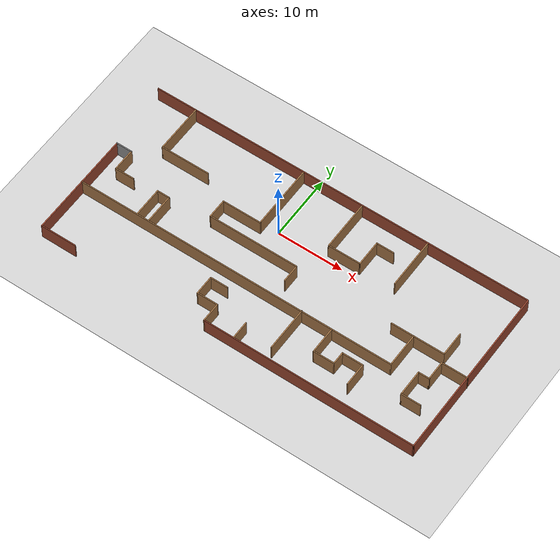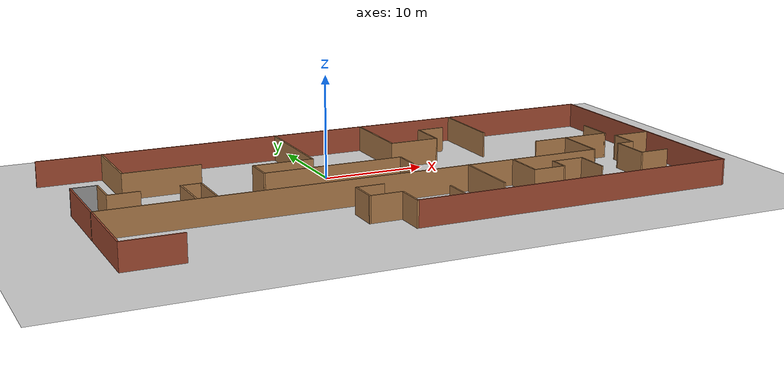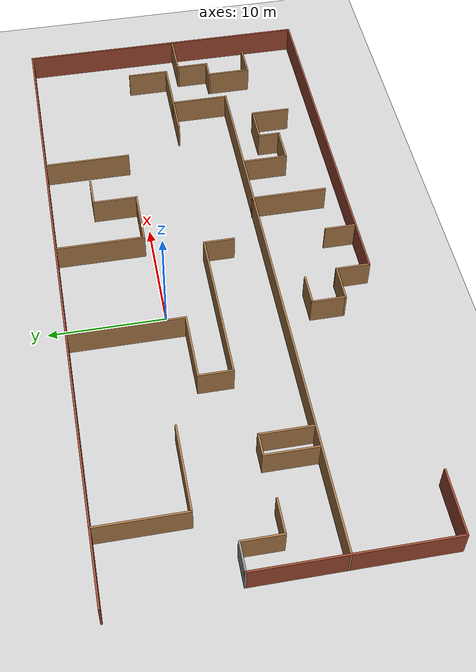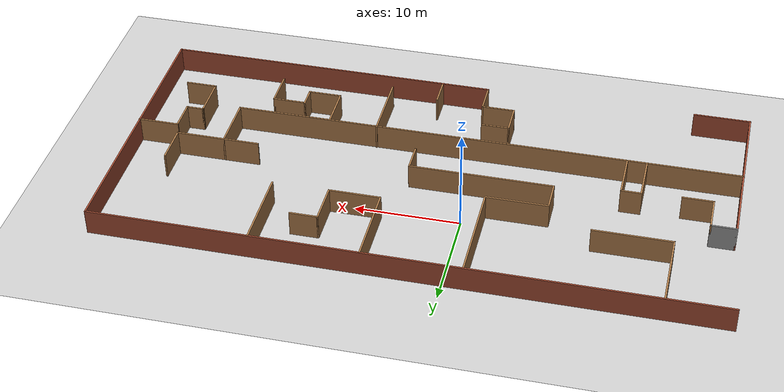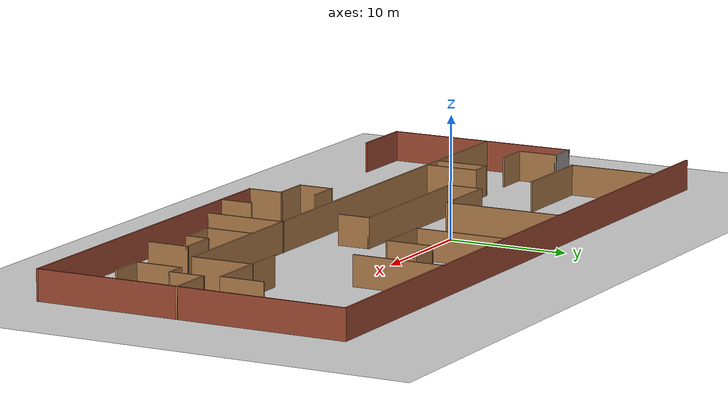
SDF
<sdf version="1.7">
 <world name="default">
  <light name="sun" type="directional">
   <pose>0 0 10 0 -0 0</pose>
   <diffuse>0.8 0.8 0.8 1</diffuse>
   <specular>0.2 0.2 0.2 1</specular>
   <attenuation>
    <range>1000</range>
    <constant>0.9</constant>
    <linear>0.01</linear>
    <quadratic>0.001</quadratic>
   </attenuation>
   <direction>-0.5 0.1 -0.9</direction>
   <spot><inner_angle>0</inner_angle><outer_angle>0</outer_angle><falloff>0</falloff></spot>
  </light>
  <model name="ground_plane">
   <static>1</static>
   <link name="link">
    <collision name="collision">
     <geometry><plane><normal>0 0 1</normal><size>100 100</size></plane></geometry>
     <surface>
      <contact><collide_bitmask>65535</collide_bitmask></contact>
      <friction><ode><mu>100</mu><mu2>50</mu2></ode></friction>
     </surface>
    </collision>
    <visual name="visual">
     <cast_shadows>0</cast_shadows>
     <geometry><plane><normal>0 0 1</normal><size>100 100</size></plane></geometry>
     <material>
      <script><uri>file://media/materials/scripts/gazebo.material</uri><name>Gazebo/Grey</name></script>
     </material>
    </visual>
   </link>
  </model>
  <gravity>0 0 -9.8</gravity>
  <magnetic_field>6e-06 2.3e-05 -4.2e-05</magnetic_field>
  <atmosphere type="adiabatic"/>
  <physics type="ode">
   <max_step_size>0.001</max_step_size>
   <real_time_factor>1</real_time_factor>
   <real_time_update_rate>1000</real_time_update_rate>
  </physics>
  <scene><ambient>0.4 0.4 0.4 1</ambient><background>0.7 0.7 0.7 1</background><shadows>1</shadows></scene>
  <spherical_coordinates>
   <surface_model>EARTH_WGS84</surface_model>
   <latitude_deg>0</latitude_deg>
   <longitude_deg>0</longitude_deg>
   <elevation>0</elevation>
   <heading_deg>0</heading_deg>
  </spherical_coordinates>
  <model name="maze.world">
   <pose>3.62591 -4.76303 0 0 -0 0</pose>
   <link name="Wall_1">
    <collision name="Wall_1_Collision">
     <geometry><box><size>58.5 0.15 2.5</size></box></geometry>
     <pose>0 0 1.25 0 -0 0</pose>
    </collision>
    <visual name="Wall_1_Visual">
     <pose>0 0 1.25 0 -0 0</pose>
     <geometry><box><size>58.5 0.15 2.5</size></box></geometry>
     <material>
      <script><uri>file://media/materials/scripts/gazebo.material</uri><name>Gazebo/Bricks</name></script>
      <ambient>1 1 1 1</ambient>
     </material>
     <meta><layer>0</layer></meta>
    </visual>
    <pose>-0.024029 13.2267 0 0 -0 0</pose>
   </link>
   <link name="Wall_11">
    <collision name="Wall_11_Collision">
     <geometry><box><size>7.75 0.15 2.5</size></box></geometry>
     <pose>0 0 1.25 0 -0 0</pose>
    </collision>
    <visual name="Wall_11_Visual">
     <pose>0 0 1.25 0 -0 0</pose>
     <geometry><box><size>7.75 0.15 2.5</size></box></geometry>
     <material>
      <script><uri>file://media/materials/scripts/gazebo.material</uri><name>Gazebo/Wood</name></script>
      <ambient>1 1 1 1</ambient>
     </material>
     <meta><layer>0</layer></meta>
    </visual>
    <pose>13.9059 9.42665 0 0 -0 -1.5708</pose>
   </link>
   <link name="Wall_14">
    <collision name="Wall_14_Collision">
     <geometry><box><size>16.25 0.15 2.5</size></box></geometry>
     <pose>0 0 1.25 0 -0 0</pose>
    </collision>
    <visual name="Wall_14_Visual">
     <pose>0 0 1.25 0 -0 0</pose>
     <geometry><box><size>16.25 0.15 2.5</size></box></geometry>
     <material>
      <script><uri>file://media/materials/scripts/gazebo.material</uri><name>Gazebo/Bricks</name></script>
      <ambient>1 1 1 1</ambient>
     </material>
     <meta><layer>0</layer></meta>
    </visual>
    <pose>-28.3193 -5.17665 0 0 -0 -1.5708</pose>
   </link>
   <link name="Wall_15">
    <collision name="Wall_15_Collision">
     <geometry><box><size>5.5 0.15 2.5</size></box></geometry>
     <pose>0 0 1.25 0 -0 0</pose>
    </collision>
    <visual name="Wall_15_Visual">
     <pose>0 0 1.25 0 -0 0</pose>
     <geometry><box><size>5.5 0.15 2.5</size></box></geometry>
     <material>
      <script><uri>file://media/materials/scripts/gazebo.material</uri><name>Gazebo/Bricks</name></script>
      <ambient>1 1 1 1</ambient>
     </material>
     <meta><layer>0</layer></meta>
    </visual>
    <pose>-25.6443 -13.2267 0 0 -0 0</pose>
   </link>
   <link name="Wall_17">
    <collision name="Wall_17_Collision">
     <geometry><box><size>2.5 0.15 2.5</size></box></geometry>
     <pose>0 0 1.25 0 -0 0</pose>
    </collision>
    <visual name="Wall_17_Visual">
     <pose>0 0 1.25 0 -0 0</pose>
     <geometry><box><size>2.5 0.15 2.5</size></box></geometry>
     <material>
      <script><uri>file://media/materials/scripts/gazebo.material</uri><name>Gazebo/Grey</name></script>
      <ambient>1 1 1 1</ambient>
     </material>
     <meta><layer>0</layer></meta>
    </visual>
    <pose>-27.1443 2.87335 0 0 -0 0</pose>
   </link>
   <link name="Wall_18">
    <collision name="Wall_18_Collision">
     <geometry><box><size>3.5 0.15 2.5</size></box></geometry>
     <pose>0 0 1.25 0 -0 0</pose>
    </collision>
    <visual name="Wall_18_Visual">
     <pose>0 0 1.25 0 -0 0</pose>
     <geometry><box><size>3.5 0.15 2.5</size></box></geometry>
     <material>
      <script><uri>file://media/materials/scripts/gazebo.material</uri><name>Gazebo/Wood</name></script>
      <ambient>1 1 1 1</ambient>
     </material>
     <meta><layer>0</layer></meta>
    </visual>
    <pose>-25.9693 1.19835 0 0 -0 -1.5708</pose>
   </link>
   <link name="Wall_19">
    <collision name="Wall_19_Collision">
     <geometry><box><size>3 0.15 2.5</size></box></geometry>
     <pose>0 0 1.25 0 -0 0</pose>
    </collision>
    <visual name="Wall_19_Visual">
     <pose>0 0 1.25 0 -0 0</pose>
     <geometry><box><size>3 0.15 2.5</size></box></geometry>
     <material>
      <script><uri>file://media/materials/scripts/gazebo.material</uri><name>Gazebo/Wood</name></script>
      <ambient>1 1 1 1</ambient>
     </material>
     <meta><layer>0</layer></meta>
    </visual>
    <pose>-24.5443 -0.476653 0 0 -0 0</pose>
   </link>
   <link name="Wall_21">
    <collision name="Wall_21_Collision">
     <geometry><box><size>48.75 0.15 2.5</size></box></geometry>
     <pose>0 0 1.25 0 -0 0</pose>
    </collision>
    <visual name="Wall_21_Visual">
     <pose>0 0 1.25 0 -0 0</pose>
     <geometry><box><size>48.75 0.15 2.5</size></box></geometry>
     <material>
      <script><uri>file://media/materials/scripts/gazebo.material</uri><name>Gazebo/Wood</name></script>
      <ambient>1 1 1 1</ambient>
     </material>
     <meta><layer>0</layer></meta>
    </visual>
    <pose>-4.01934 -4.70554 0 0 -0 0</pose>
   </link>
   <link name="Wall_22">
    <collision name="Wall_22_Collision">
     <geometry><box><size>5.25 0.15 2.5</size></box></geometry>
     <pose>0 0 1.25 0 -0 0</pose>
    </collision>
    <visual name="Wall_22_Visual">
     <pose>0 0 1.25 0 -0 0</pose>
     <geometry><box><size>5.25 0.15 2.5</size></box></geometry>
     <material>
      <script><uri>file://media/materials/scripts/gazebo.material</uri><name>Gazebo/Wood</name></script>
      <ambient>1 1 1 1</ambient>
     </material>
     <meta><layer>0</layer></meta>
    </visual>
    <pose>20.2807 -2.15554 0 0 -0 1.5708</pose>
   </link>
   <link name="Wall_26">
    <collision name="Wall_26_Collision">
     <geometry><box><size>4.75 0.15 2.5</size></box></geometry>
     <pose>0 0 1.25 0 -0 0</pose>
    </collision>
    <visual name="Wall_26_Visual">
     <pose>0 0 1.25 0 -0 0</pose>
     <geometry><box><size>4.75 0.15 2.5</size></box></geometry>
     <material>
      <script><uri>file://media/materials/scripts/gazebo.material</uri><name>Gazebo/Wood</name></script>
      <ambient>1 1 1 1</ambient>
     </material>
     <meta><layer>0</layer></meta>
    </visual>
    <pose>22.5807 0.394456 0 0 -0 0</pose>
   </link>
   <link name="Wall_27">
    <collision name="Wall_27_Collision">
     <geometry><box><size>3.75 0.15 2.5</size></box></geometry>
     <pose>0 0 1.25 0 -0 0</pose>
    </collision>
    <visual name="Wall_27_Visual">
     <pose>0 0 1.25 0 -0 0</pose>
     <geometry><box><size>3.75 0.15 2.5</size></box></geometry>
     <material>
      <script><uri>file://media/materials/scripts/gazebo.material</uri><name>Gazebo/Wood</name></script>
      <ambient>1 1 1 1</ambient>
     </material>
     <meta><layer>0</layer></meta>
    </visual>
    <pose>24.8807 2.19446 0 0 -0 1.5708</pose>
   </link>
   <link name="Wall_29">
    <collision name="Wall_29_Collision">
     <geometry><box><size>3.5 0.15 2.5</size></box></geometry>
     <pose>0 0 1.25 0 -0 0</pose>
    </collision>
    <visual name="Wall_29_Visual">
     <pose>0 0 1.25 0 -0 0</pose>
     <geometry><box><size>3.5 0.15 2.5</size></box></geometry>
     <material>
      <script><uri>file://media/materials/scripts/gazebo.material</uri><name>Gazebo/Wood</name></script>
      <ambient>1 1 1 1</ambient>
     </material>
     <meta><layer>0</layer></meta>
    </visual>
    <pose>18.6057 0.394456 0 0 -0 3.14159</pose>
   </link>
   <link name="Wall_31">
    <collision name="Wall_31_Collision">
     <geometry><box><size>6.75 0.15 2.5</size></box></geometry>
     <pose>0 0 1.25 0 -0 0</pose>
    </collision>
    <visual name="Wall_31_Visual">
     <pose>0 0 1.25 0 -0 0</pose>
     <geometry><box><size>6.75 0.15 2.5</size></box></geometry>
     <material>
      <script><uri>file://media/materials/scripts/gazebo.material</uri><name>Gazebo/Wood</name></script>
      <ambient>1 1 1 1</ambient>
     </material>
     <meta><layer>0</layer></meta>
    </visual>
    <pose>6.5977 -7.93788 0 0 -0 -1.5708</pose>
   </link>
   <link name="Wall_33">
    <collision name="Wall_33_Collision">
     <geometry><box><size>26.25 0.15 2.5</size></box></geometry>
     <pose>0 0 1.25 0 -0 0</pose>
    </collision>
    <visual name="Wall_33_Visual">
     <pose>0 0 1.25 0 -0 0</pose>
     <geometry><box><size>26.25 0.15 2.5</size></box></geometry>
     <material>
      <script><uri>file://media/materials/scripts/gazebo.material</uri><name>Gazebo/Bricks</name></script>
      <ambient>1 1 1 1</ambient>
     </material>
     <meta><layer>0</layer></meta>
    </visual>
    <pose>29.151 0.176653 0 0 -0 -1.5708</pose>
   </link>
   <link name="Wall_34">
    <collision name="Wall_34_Collision">
     <geometry><box><size>32 0.15 2.5</size></box></geometry>
     <pose>0 0 1.25 0 -0 0</pose>
    </collision>
    <visual name="Wall_34_Visual">
     <pose>0 0 1.25 0 -0 0</pose>
     <geometry><box><size>32 0.15 2.5</size></box></geometry>
     <material>
      <script><uri>file://media/materials/scripts/gazebo.material</uri><name>Gazebo/Bricks</name></script>
      <ambient>1 1 1 1</ambient>
     </material>
     <meta><layer>0</layer></meta>
    </visual>
    <pose>13.226 -12.8733 0 0 -0 3.14159</pose>
   </link>
   <link name="Wall_35">
    <collision name="Wall_35_Collision">
     <geometry><box><size>3 0.15 2.5</size></box></geometry>
     <pose>0 0 1.25 0 -0 0</pose>
    </collision>
    <visual name="Wall_35_Visual">
     <pose>0 0 1.25 0 -0 0</pose>
     <geometry><box><size>3 0.15 2.5</size></box></geometry>
     <material>
      <script><uri>file://media/materials/scripts/gazebo.material</uri><name>Gazebo/Wood</name></script>
      <ambient>1 1 1 1</ambient>
     </material>
     <meta><layer>0</layer></meta>
    </visual>
    <pose>-2.69903 -11.4483 0 0 -0 1.5708</pose>
   </link>
   <link name="Wall_36">
    <collision name="Wall_36_Collision">
     <geometry><box><size>3.25 0.15 2.5</size></box></geometry>
     <pose>0 0 1.25 0 -0 0</pose>
    </collision>
    <visual name="Wall_36_Visual">
     <pose>0 0 1.25 0 -0 0</pose>
     <geometry><box><size>3.25 0.15 2.5</size></box></geometry>
     <material>
      <script><uri>file://media/materials/scripts/gazebo.material</uri><name>Gazebo/Wood</name></script>
      <ambient>1 1 1 1</ambient>
     </material>
     <meta><layer>0</layer></meta>
    </visual>
    <pose>-4.24903 -10.0233 0 0 -0 3.14159</pose>
   </link>
   <link name="Wall_37">
    <collision name="Wall_37_Collision">
     <geometry><box><size>3 0.15 2.5</size></box></geometry>
     <pose>0 0 1.25 0 -0 0</pose>
    </collision>
    <visual name="Wall_37_Visual">
     <pose>0 0 1.25 0 -0 0</pose>
     <geometry><box><size>3 0.15 2.5</size></box></geometry>
     <material>
      <script><uri>file://media/materials/scripts/gazebo.material</uri><name>Gazebo/Wood</name></script>
      <ambient>1 1 1 1</ambient>
     </material>
     <meta><layer>0</layer></meta>
    </visual>
    <pose>-5.79903 -8.59835 0 0 -0 1.5708</pose>
   </link>
   <link name="Wall_38">
    <collision name="Wall_38_Collision">
     <geometry><box><size>2.75 0.15 2.5</size></box></geometry>
     <pose>0 0 1.25 0 -0 0</pose>
    </collision>
    <visual name="Wall_38_Visual">
     <pose>0 0 1.25 0 -0 0</pose>
     <geometry><box><size>2.75 0.15 2.5</size></box></geometry>
     <material>
      <script><uri>file://media/materials/scripts/gazebo.material</uri><name>Gazebo/Wood</name></script>
      <ambient>1 1 1 1</ambient>
     </material>
     <meta><layer>0</layer></meta>
    </visual>
    <pose>-4.49903 -7.17335 0 0 -0 0</pose>
   </link>
   <link name="Wall_40">
    <collision name="Wall_40_Collision">
     <geometry><box><size>2.75 0.15 2.5</size></box></geometry>
     <pose>0 0 1.25 0 -0 0</pose>
    </collision>
    <visual name="Wall_40_Visual">
     <pose>0 0 1.25 0 -0 0</pose>
     <geometry><box><size>2.75 0.15 2.5</size></box></geometry>
     <material>
      <script><uri>file://media/materials/scripts/gazebo.material</uri><name>Gazebo/Wood</name></script>
      <ambient>1 1 1 1</ambient>
     </material>
     <meta><layer>0</layer></meta>
    </visual>
    <pose>1.86089 -11.4867 0 0 -0 -1.5708</pose>
   </link>
   <link name="Wall_42">
    <collision name="Wall_42_Collision">
     <geometry><box><size>4 0.15 2.5</size></box></geometry>
     <pose>0 0 1.25 0 -0 0</pose>
    </collision>
    <visual name="Wall_42_Visual">
     <pose>0 0 1.25 0 -0 0</pose>
     <geometry><box><size>4 0.15 2.5</size></box></geometry>
     <material>
      <script><uri>file://media/materials/scripts/gazebo.material</uri><name>Gazebo/Wood</name></script>
      <ambient>1 1 1 1</ambient>
     </material>
     <meta><layer>0</layer></meta>
    </visual>
    <pose>27.274 -0.84843 0 0 -0 3.14159</pose>
   </link>
   <link name="Wall_43">
    <collision name="Wall_43_Collision">
     <geometry><box><size>3 0.15 2.5</size></box></geometry>
     <pose>0 0 1.25 0 -0 0</pose>
    </collision>
    <visual name="Wall_43_Visual">
     <pose>0 0 1.25 0 -0 0</pose>
     <geometry><box><size>3 0.15 2.5</size></box></geometry>
     <material>
      <script><uri>file://media/materials/scripts/gazebo.material</uri><name>Gazebo/Wood</name></script>
      <ambient>1 1 1 1</ambient>
     </material>
     <meta><layer>0</layer></meta>
    </visual>
    <pose>25.349 -2.27343 0 0 -0 -1.5708</pose>
   </link>
   <link name="Wall_44">
    <collision name="Wall_44_Collision">
     <geometry><box><size>1.75 0.15 2.5</size></box></geometry>
     <pose>0 0 1.25 0 -0 0</pose>
    </collision>
    <visual name="Wall_44_Visual">
     <pose>0 0 1.25 0 -0 0</pose>
     <geometry><box><size>1.75 0.15 2.5</size></box></geometry>
     <material>
      <script><uri>file://media/materials/scripts/gazebo.material</uri><name>Gazebo/Wood</name></script>
      <ambient>1 1 1 1</ambient>
     </material>
     <meta><layer>0</layer></meta>
    </visual>
    <pose>24.549 -3.69843 0 0 -0 3.14159</pose>
   </link>
   <link name="Wall_45">
    <collision name="Wall_45_Collision">
     <geometry><box><size>4 0.15 2.5</size></box></geometry>
     <pose>0 0 1.25 0 -0 0</pose>
    </collision>
    <visual name="Wall_45_Visual">
     <pose>0 0 1.25 0 -0 0</pose>
     <geometry><box><size>4 0.15 2.5</size></box></geometry>
     <material>
      <script><uri>file://media/materials/scripts/gazebo.material</uri><name>Gazebo/Wood</name></script>
      <ambient>1 1 1 1</ambient>
     </material>
     <meta><layer>0</layer></meta>
    </visual>
    <pose>23.749 -5.62343 0 0 -0 -1.5708</pose>
   </link>
   <link name="Wall_46">
    <collision name="Wall_46_Collision">
     <geometry><box><size>3 0.15 2.5</size></box></geometry>
     <pose>0 0 1.25 0 -0 0</pose>
    </collision>
    <visual name="Wall_46_Visual">
     <pose>0 0 1.25 0 -0 0</pose>
     <geometry><box><size>3 0.15 2.5</size></box></geometry>
     <material>
      <script><uri>file://media/materials/scripts/gazebo.material</uri><name>Gazebo/Wood</name></script>
      <ambient>1 1 1 1</ambient>
     </material>
     <meta><layer>0</layer></meta>
    </visual>
    <pose>25.174 -7.54843 0 0 -0 0</pose>
   </link>
   <link name="Wall_48">
    <collision name="Wall_48_Collision">
     <geometry><box><size>10 0.15 2.5</size></box></geometry>
     <pose>0 0 1.25 0 -0 0</pose>
    </collision>
    <visual name="Wall_48_Visual">
     <pose>0 0 1.25 0 -0 0</pose>
     <geometry><box><size>10 0.15 2.5</size></box></geometry>
     <material>
      <script><uri>file://media/materials/scripts/gazebo.material</uri><name>Gazebo/Wood</name></script>
      <ambient>1 1 1 1</ambient>
     </material>
     <meta><layer>0</layer></meta>
    </visual>
    <pose>-5.58266 8.30165 0 0 -0 -1.5708</pose>
   </link>
   <link name="Wall_49">
    <collision name="Wall_49_Collision">
     <geometry><box><size>6 0.15 2.5</size></box></geometry>
     <pose>0 0 1.25 0 -0 0</pose>
    </collision>
    <visual name="Wall_49_Visual">
     <pose>0 0 1.25 0 -0 0</pose>
     <geometry><box><size>6 0.15 2.5</size></box></geometry>
     <material>
      <script><uri>file://media/materials/scripts/gazebo.material</uri><name>Gazebo/Wood</name></script>
      <ambient>1 1 1 1</ambient>
     </material>
     <meta><layer>0</layer></meta>
    </visual>
    <pose>-8.50766 3.37665 0 0 -0 3.14159</pose>
   </link>
   <link name="Wall_50">
    <collision name="Wall_50_Collision">
     <geometry><box><size>3 0.15 2.5</size></box></geometry>
     <pose>0 0 1.25 0 -0 0</pose>
    </collision>
    <visual name="Wall_50_Visual">
     <pose>0 0 1.25 0 -0 0</pose>
     <geometry><box><size>3 0.15 2.5</size></box></geometry>
     <material>
      <script><uri>file://media/materials/scripts/gazebo.material</uri><name>Gazebo/Wood</name></script>
      <ambient>1 1 1 1</ambient>
     </material>
     <meta><layer>0</layer></meta>
    </visual>
    <pose>-11.4327 1.95165 0 0 -0 -1.5708</pose>
   </link>
   <link name="Wall_51">
    <collision name="Wall_51_Collision">
     <geometry><box><size>13.75 0.15 2.5</size></box></geometry>
     <pose>0 0 1.25 0 -0 0</pose>
    </collision>
    <visual name="Wall_51_Visual">
     <pose>0 0 1.25 0 -0 0</pose>
     <geometry><box><size>13.75 0.15 2.5</size></box></geometry>
     <material>
      <script><uri>file://media/materials/scripts/gazebo.material</uri><name>Gazebo/Wood</name></script>
      <ambient>1 1 1 1</ambient>
     </material>
     <meta><layer>0</layer></meta>
    </visual>
    <pose>-4.63267 0.526653 0 0 -0 0</pose>
   </link>
   <link name="Wall_52">
    <collision name="Wall_52_Collision">
     <geometry><box><size>2.75 0.15 2.5</size></box></geometry>
     <pose>0 0 1.25 0 -0 0</pose>
    </collision>
    <visual name="Wall_52_Visual">
     <pose>0 0 1.25 0 -0 0</pose>
     <geometry><box><size>2.75 0.15 2.5</size></box></geometry>
     <material>
      <script><uri>file://media/materials/scripts/gazebo.material</uri><name>Gazebo/Wood</name></script>
      <ambient>1 1 1 1</ambient>
     </material>
     <meta><layer>0</layer></meta>
    </visual>
    <pose>2.16734 -0.773347 0 0 -0 -1.5708</pose>
   </link>
   <link name="Wall_54">
    <collision name="Wall_54_Collision">
     <geometry><box><size>7.75 0.15 2.5</size></box></geometry>
     <pose>0 0 1.25 0 -0 0</pose>
    </collision>
    <visual name="Wall_54_Visual">
     <pose>0 0 1.25 0 -0 0</pose>
     <geometry><box><size>7.75 0.15 2.5</size></box></geometry>
     <material>
      <script><uri>file://media/materials/scripts/gazebo.material</uri><name>Gazebo/Wood</name></script>
      <ambient>1 1 1 1</ambient>
     </material>
     <meta><layer>0</layer></meta>
    </visual>
    <pose>3.68794 9.35898 0 0 -0 -1.5708</pose>
   </link>
   <link name="Wall_55">
    <collision name="Wall_55_Collision">
     <geometry><box><size>5 0.15 2.5</size></box></geometry>
     <pose>0 0 1.25 0 -0 0</pose>
    </collision>
    <visual name="Wall_55_Visual">
     <pose>0 0 1.25 0 -0 0</pose>
     <geometry><box><size>5 0.15 2.5</size></box></geometry>
     <material>
      <script><uri>file://media/materials/scripts/gazebo.material</uri><name>Gazebo/Wood</name></script>
      <ambient>1 1 1 1</ambient>
     </material>
     <meta><layer>0</layer></meta>
    </visual>
    <pose>6.11294 5.55898 0 0 -0 0</pose>
   </link>
   <link name="Wall_56">
    <collision name="Wall_56_Collision">
     <geometry><box><size>4 0.15 2.5</size></box></geometry>
     <pose>0 0 1.25 0 -0 0</pose>
    </collision>
    <visual name="Wall_56_Visual">
     <pose>0 0 1.25 0 -0 0</pose>
     <geometry><box><size>4 0.15 2.5</size></box></geometry>
     <material>
      <script><uri>file://media/materials/scripts/gazebo.material</uri><name>Gazebo/Wood</name></script>
      <ambient>1 1 1 1</ambient>
     </material>
     <meta><layer>0</layer></meta>
    </visual>
    <pose>8.53794 7.48398 0 0 -0 1.5708</pose>
   </link>
   <link name="Wall_57">
    <collision name="Wall_57_Collision">
     <geometry><box><size>2.75 0.15 2.5</size></box></geometry>
     <pose>0 0 1.25 0 -0 0</pose>
    </collision>
    <visual name="Wall_57_Visual">
     <pose>0 0 1.25 0 -0 0</pose>
     <geometry><box><size>2.75 0.15 2.5</size></box></geometry>
     <material>
      <script><uri>file://media/materials/scripts/gazebo.material</uri><name>Gazebo/Wood</name></script>
      <ambient>1 1 1 1</ambient>
     </material>
     <meta><layer>0</layer></meta>
    </visual>
    <pose>9.83794 9.40898 0 0 -0 0</pose>
   </link>
   <link name="Wall_59">
    <collision name="Wall_59_Collision">
     <geometry><box><size>4.5 0.15 2.5</size></box></geometry>
     <pose>0 0 1.25 0 -0 0</pose>
    </collision>
    <visual name="Wall_59_Visual">
     <pose>0 0 1.25 0 -0 0</pose>
     <geometry><box><size>4.5 0.15 2.5</size></box></geometry>
     <material>
      <script><uri>file://media/materials/scripts/gazebo.material</uri><name>Gazebo/Wood</name></script>
      <ambient>1 1 1 1</ambient>
     </material>
     <meta><layer>0</layer></meta>
    </visual>
    <pose>-19.3871 -2.39521 0 0 -0 1.5708</pose>
   </link>
   <link name="Wall_60">
    <collision name="Wall_60_Collision">
     <geometry><box><size>2 0.15 2.5</size></box></geometry>
     <pose>0 0 1.25 0 -0 0</pose>
    </collision>
    <visual name="Wall_60_Visual">
     <pose>0 0 1.25 0 -0 0</pose>
     <geometry><box><size>2 0.15 2.5</size></box></geometry>
     <material>
      <script><uri>file://media/materials/scripts/gazebo.material</uri><name>Gazebo/Wood</name></script>
      <ambient>1 1 1 1</ambient>
     </material>
     <meta><layer>0</layer></meta>
    </visual>
    <pose>-18.4621 -0.220207 0 0 -0 0</pose>
   </link>
   <link name="Wall_63">
    <collision name="Wall_63_Collision">
     <geometry><box><size>4.5 0.15 2.5</size></box></geometry>
     <pose>0 0 1.25 0 -0 0</pose>
    </collision>
    <visual name="Wall_63_Visual">
     <pose>0 0 1.25 0 -0 0</pose>
     <geometry><box><size>4.5 0.15 2.5</size></box></geometry>
     <material>
      <script><uri>file://media/materials/scripts/gazebo.material</uri><name>Gazebo/Wood</name></script>
      <ambient>1 1 1 1</ambient>
     </material>
     <meta><layer>0</layer></meta>
    </visual>
    <pose>-17.5371 -2.39521 0 0 -0 -1.5708</pose>
   </link>
   <link name="Wall_65">
    <collision name="Wall_65_Collision">
     <geometry><box><size>4 0.15 2.5</size></box></geometry>
     <pose>0 0 1.25 0 -0 0</pose>
    </collision>
    <visual name="Wall_65_Visual">
     <pose>0 0 1.25 0 -0 0</pose>
     <geometry><box><size>4 0.15 2.5</size></box></geometry>
     <material>
      <script><uri>file://media/materials/scripts/gazebo.material</uri><name>Gazebo/Wood</name></script>
      <ambient>1 1 1 1</ambient>
     </material>
     <meta><layer>0</layer></meta>
    </visual>
    <pose>11.2668 -6.76588 0 0 -0 -1.5708</pose>
   </link>
   <link name="Wall_66">
    <collision name="Wall_66_Collision">
     <geometry><box><size>3.25 0.15 2.5</size></box></geometry>
     <pose>0 0 1.25 0 -0 0</pose>
    </collision>
    <visual name="Wall_66_Visual">
     <pose>0 0 1.25 0 -0 0</pose>
     <geometry><box><size>3.25 0.15 2.5</size></box></geometry>
     <material>
      <script><uri>file://media/materials/scripts/gazebo.material</uri><name>Gazebo/Wood</name></script>
      <ambient>1 1 1 1</ambient>
     </material>
     <meta><layer>0</layer></meta>
    </visual>
    <pose>12.8168 -8.69088 0 0 -0 0</pose>
   </link>
   <link name="Wall_67">
    <collision name="Wall_67_Collision">
     <geometry><box><size>2 0.15 2.5</size></box></geometry>
     <pose>0 0 1.25 0 -0 0</pose>
    </collision>
    <visual name="Wall_67_Visual">
     <pose>0 0 1.25 0 -0 0</pose>
     <geometry><box><size>2 0.15 2.5</size></box></geometry>
     <material>
      <script><uri>file://media/materials/scripts/gazebo.material</uri><name>Gazebo/Wood</name></script>
      <ambient>1 1 1 1</ambient>
     </material>
     <meta><layer>0</layer></meta>
    </visual>
    <pose>14.3668 -7.76588 0 0 -0 1.5708</pose>
   </link>
   <link name="Wall_68">
    <collision name="Wall_68_Collision">
     <geometry><box><size>3.25 0.15 2.5</size></box></geometry>
     <pose>0 0 1.25 0 -0 0</pose>
    </collision>
    <visual name="Wall_68_Visual">
     <pose>0 0 1.25 0 -0 0</pose>
     <geometry><box><size>3.25 0.15 2.5</size></box></geometry>
     <material>
      <script><uri>file://media/materials/scripts/gazebo.material</uri><name>Gazebo/Wood</name></script>
      <ambient>1 1 1 1</ambient>
     </material>
     <meta><layer>0</layer></meta>
    </visual>
    <pose>15.9168 -6.84088 0 0 -0 0</pose>
   </link>
   <link name="Wall_69">
    <collision name="Wall_69_Collision">
     <geometry><box><size>3.5 0.15 2.5</size></box></geometry>
     <pose>0 0 1.25 0 -0 0</pose>
    </collision>
    <visual name="Wall_69_Visual">
     <pose>0 0 1.25 0 -0 0</pose>
     <geometry><box><size>3.5 0.15 2.5</size></box></geometry>
     <material>
      <script><uri>file://media/materials/scripts/gazebo.material</uri><name>Gazebo/Wood</name></script>
      <ambient>1 1 1 1</ambient>
     </material>
     <meta><layer>0</layer></meta>
    </visual>
    <pose>17.4668 -8.51588 0 0 -0 -1.5708</pose>
   </link>
   <link name="Wall_8">
    <collision name="Wall_8_Collision">
     <geometry><box><size>7.5 0.15 2.5</size></box></geometry>
     <pose>0 0 1.25 0 -0 0</pose>
    </collision>
    <visual name="Wall_8_Visual">
     <pose>0 0 1.25 0 -0 0</pose>
     <geometry><box><size>7.5 0.15 2.5</size></box></geometry>
     <material>
      <script><uri>file://media/materials/scripts/gazebo.material</uri><name>Gazebo/Wood</name></script>
      <ambient>1 1 1 1</ambient>
     </material>
     <meta><layer>0</layer></meta>
    </visual>
    <pose>-23.0412 9.48398 0 0 -0 -1.5708</pose>
   </link>
   <link name="Wall_9">
    <collision name="Wall_9_Collision">
     <geometry><box><size>7.5 0.15 2.5</size></box></geometry>
     <pose>0 0 1.25 0 -0 0</pose>
    </collision>
    <visual name="Wall_9_Visual">
     <pose>0 0 1.25 0 -0 0</pose>
     <geometry><box><size>7.5 0.15 2.5</size></box></geometry>
     <material>
      <script><uri>file://media/materials/scripts/gazebo.material</uri><name>Gazebo/Wood</name></script>
      <ambient>1 1 1 1</ambient>
     </material>
     <meta><layer>0</layer></meta>
    </visual>
    <pose>-19.3662 5.80898 0 0 -0 0</pose>
   </link>
   <static>1</static>
  </model>
 </world>
</sdf>
